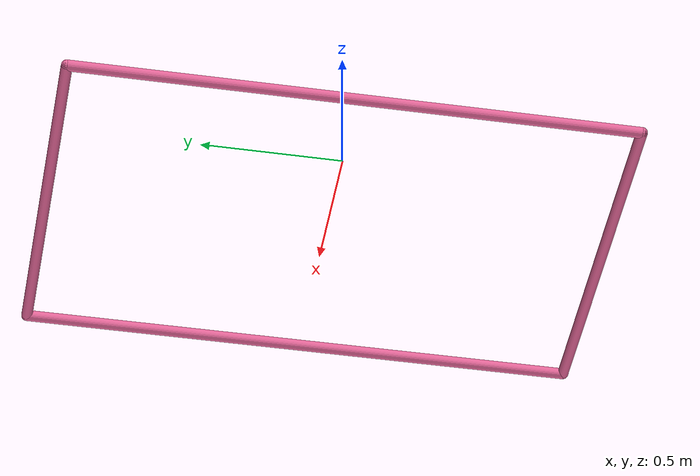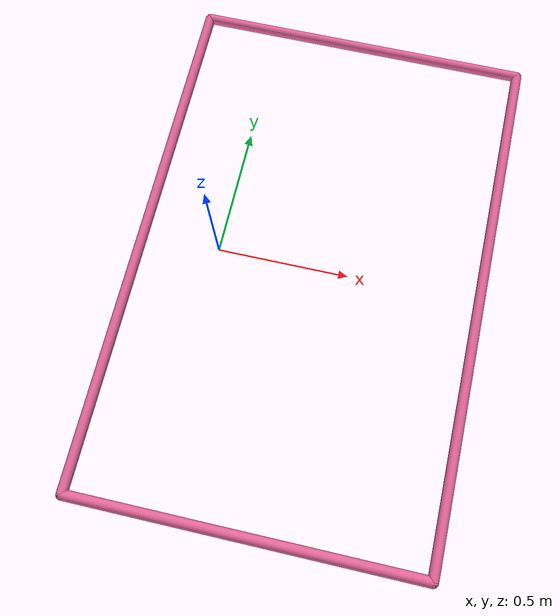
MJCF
<mujoco model="reacher_world">
	<compiler angle="radian" inertiafromgeom="true"/>
	<default>
		<joint armature="1" damping="1" limited="true"/>
		<geom contype="0" friction="1 0.1 0.1" rgba="0.8 0.0 0 1"/>
	</default>
	<option gravity="0 0 -9.81" integrator="RK4" timestep="0.01"/>

	<asset>
		<texture builtin="gradient" height="100" rgb1=".4 .5 .6" rgb2="0 0 0" type="skybox" width="100"/>

		<texture builtin="flat" height="1278" mark="cross" markrgb="1 1 1" name="texgeom" random="0.01" rgb1="0.8 0.6 0.4" rgb2="0.8 0.6 0.4" type="cube" width="127"/>
		<material name="geom" texture="texgeom" texuniform="true"/>

		<texture builtin="checker" height="100" name="texplane" rgb1="1 1 0" rgb2="0.8 0.8 0.8" type="2d" width="100"/>
		<material name="MatPlane" reflectance="0.5" shininess="1" specular="1" texrepeat="60 60" texture="texplane"/>
	</asset>

	<worldbody>
		<geom conaffinity="0" fromto="-0.3 -1.0 .01  1.0 -1.0 .01" name="sideS" rgba="0.9 0.4 0.6 1" size=".02" type="capsule"/>
		<geom conaffinity="0" fromto=" 1.0 -1.0 .01  1.0  1.0 .01" name="sideE" rgba="0.9 0.4 0.6 1" size=".02" type="capsule"/>
		<geom conaffinity="0" fromto="-0.3  1.0 .01  1.0  1.0 .01" name="sideN" rgba="0.9 0.4 0.6 1" size=".02" type="capsule"/>
		<geom conaffinity="0" fromto="-0.3 -1.0 .01 -0.3  1.0 .01" name="sideW" rgba="0.9 0.4 0.6 1" size=".02" type="capsule"/>
	</worldbody>
</mujoco>
